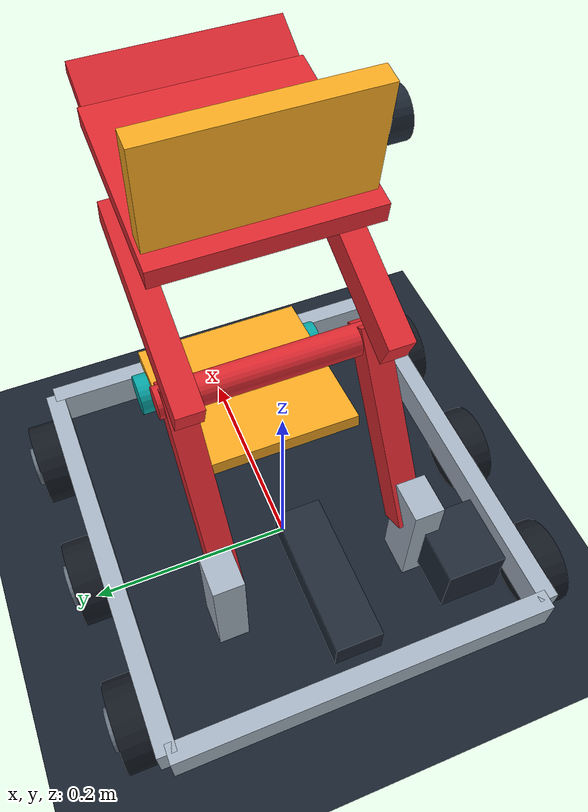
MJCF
<mujoco model="Toggle-Knee Pop-Up Tray"><compiler angle="degree" /><visual><global offwidth="800" offheight="600" /><quality offsamples="0" /><headlight ambient=".45 .45 .45" /></visual><worldbody><light pos="0 -1 3" castshadow="false" /><geom type="plane" size="2 2 .1" rgba=".09 .13 .18 1" /><geom type="box" pos="0 -0.18 0.066275" size="0.195 0.009 0.018" euler="0 0 0" rgba=".65 .7 .76 1" contype="0" conaffinity="0" /><geom type="box" pos="0 0.18 0.066275" size="0.195 0.009 0.018" euler="0 0 0" rgba=".65 .7 .76 1" contype="0" conaffinity="0" /><geom type="box" pos="-0.195 0 0.066275" size="0.009 0.18 0.018" euler="0 0 0" rgba=".65 .7 .76 1" contype="0" conaffinity="0" /><geom type="box" pos="0.195 0 0.066275" size="0.009 0.18 0.018" euler="0 0 0" rgba=".65 .7 .76 1" contype="0" conaffinity="0" /><geom type="cylinder" pos="-0.145 -0.20099999999999998 0.041275" size="0.041275 0.015" euler="90 0 0" rgba=".08 .1 .13 1" contype="0" conaffinity="0" /><geom type="cylinder" pos="-0.145 -0.218 0.041275" size="0.019812 0.003" euler="90 0 0" rgba=".4 .45 .5 1" contype="0" conaffinity="0" /><geom type="cylinder" pos="0.0 -0.20099999999999998 0.041275" size="0.041275 0.015" euler="90 0 0" rgba=".08 .1 .13 1" contype="0" conaffinity="0" /><geom type="cylinder" pos="0.0 -0.218 0.041275" size="0.019812 0.003" euler="90 0 0" rgba=".4 .45 .5 1" contype="0" conaffinity="0" /><geom type="cylinder" pos="0.145 -0.20099999999999998 0.041275" size="0.041275 0.015" euler="90 0 0" rgba=".08 .1 .13 1" contype="0" conaffinity="0" /><geom type="cylinder" pos="0.145 -0.218 0.041275" size="0.019812 0.003" euler="90 0 0" rgba=".4 .45 .5 1" contype="0" conaffinity="0" /><geom type="cylinder" pos="-0.145 0.20099999999999998 0.041275" size="0.041275 0.015" euler="90 0 0" rgba=".08 .1 .13 1" contype="0" conaffinity="0" /><geom type="cylinder" pos="-0.145 0.218 0.041275" size="0.019812 0.003" euler="90 0 0" rgba=".4 .45 .5 1" contype="0" conaffinity="0" /><geom type="cylinder" pos="0.0 0.20099999999999998 0.041275" size="0.041275 0.015" euler="90 0 0" rgba=".08 .1 .13 1" contype="0" conaffinity="0" /><geom type="cylinder" pos="0.0 0.218 0.041275" size="0.019812 0.003" euler="90 0 0" rgba=".4 .45 .5 1" contype="0" conaffinity="0" /><geom type="cylinder" pos="0.145 0.20099999999999998 0.041275" size="0.041275 0.015" euler="90 0 0" rgba=".08 .1 .13 1" contype="0" conaffinity="0" /><geom type="cylinder" pos="0.145 0.218 0.041275" size="0.019812 0.003" euler="90 0 0" rgba=".4 .45 .5 1" contype="0" conaffinity="0" /><geom type="box" pos="-0.105 0.0 0.091275" size="0.07 0.022 0.015" euler="0 0 0" rgba=".12 .16 .21 1" contype="0" conaffinity="0" /><geom type="box" pos="-0.092 0.092 0.105" size="0.019 0.014 0.0525" euler="0.0 0.0 0.0" rgba=".65 .7 .76 1" contype="0" conaffinity="0" /><geom type="box" pos="-0.092 -0.092 0.105" size="0.019 0.014 0.0525" euler="0.0 0.0 0.0" rgba=".65 .7 .76 1" contype="0" conaffinity="0" /><geom type="box" pos="-0.03 0.086 0.19" size="0.095 0.012 0.015" euler="0.0 -55.0 0.0" rgba=".87 .16 .19 1" contype="0" conaffinity="0" /><geom type="box" pos="-0.03 -0.086 0.19" size="0.095 0.012 0.015" euler="0.0 -55.0 0.0" rgba=".87 .16 .19 1" contype="0" conaffinity="0" /><geom type="box" pos="0.058 0.086 0.318" size="0.0925 0.012 0.015" euler="0.0 -20.0 0.0" rgba=".87 .16 .19 1" contype="0" conaffinity="0" /><geom type="box" pos="0.058 -0.086 0.318" size="0.0925 0.012 0.015" euler="0.0 -20.0 0.0" rgba=".87 .16 .19 1" contype="0" conaffinity="0" /><geom type="cylinder" pos="0.018 0.0 0.257" size="0.014 0.1025" euler="90.0 0.0 0.0" rgba=".87 .16 .19 1" contype="0" conaffinity="0" /><geom type="box" pos="0.104 0.0 0.397" size="0.0825 0.092 0.009" euler="0.0 -7.0 0.0" rgba=".87 .16 .19 1" contype="0" conaffinity="0" /><geom type="box" pos="0.04 0.0 0.445" size="0.009 0.089 0.048" euler="0.0 -7.0 0.0" rgba=".96 .66 .13 1" contype="0" conaffinity="0" /><geom type="cylinder" pos="0.154 0.057 0.095" size="0.021 0.043" euler="90.0 0.0 0.0" rgba=".03 .65 .65 1" contype="0" conaffinity="0" /><geom type="cylinder" pos="0.154 -0.057 0.095" size="0.021 0.043" euler="90.0 0.0 0.0" rgba=".03 .65 .65 1" contype="0" conaffinity="0" /><geom type="box" pos="0.185 0.0 0.408" size="0.0425 0.089 0.007" euler="0.0 -25.0 0.0" rgba=".87 .16 .19 1" contype="0" conaffinity="0" /><geom type="box" pos="-0.126 -0.12 0.093" size="0.032 0.0275 0.0275" euler="0.0 0.0 0.0" rgba=".12 .16 .21 1" contype="0" conaffinity="0" /><geom type="cylinder" pos="0.109 -0.116 0.4" size="0.022 0.027" euler="90.0 0.0 0.0" rgba=".12 .16 .21 1" contype="0" conaffinity="0" /><geom type="box" pos="0.102 0.0 0.123" size="0.085 0.086 0.007" euler="0.0 6.0 0.0" rgba=".96 .66 .13 1" contype="0" conaffinity="0" /></worldbody></mujoco>
